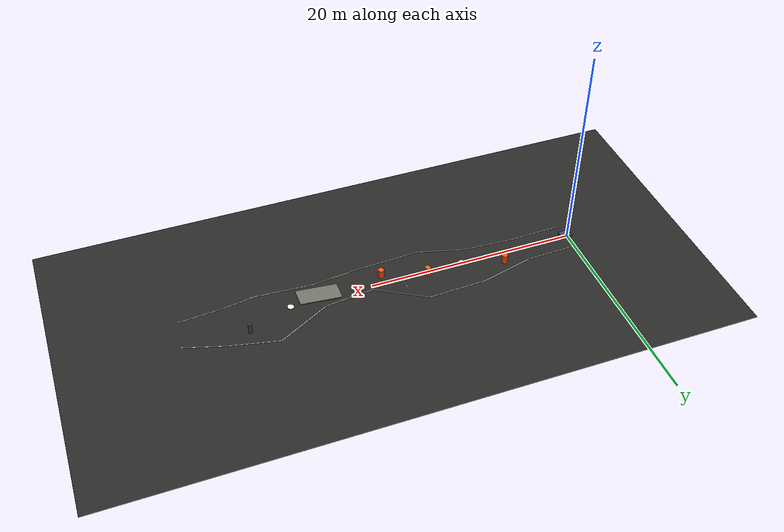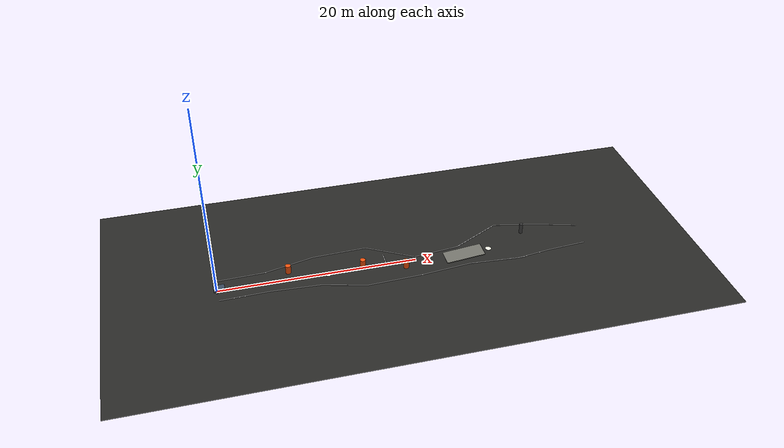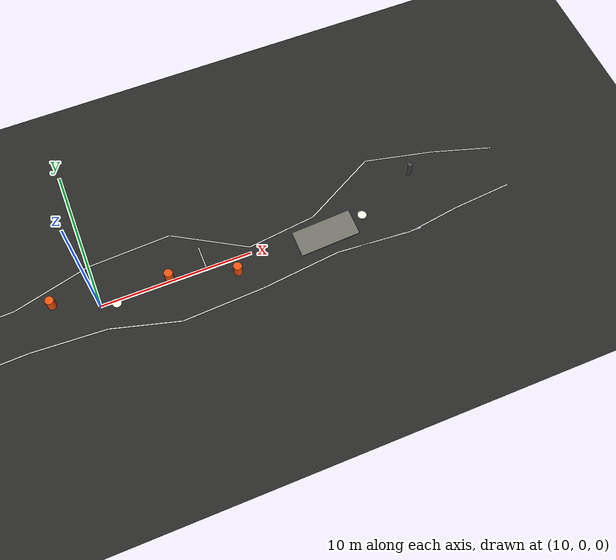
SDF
<?xml version='1.0'?>
<sdf version='1.9'>
  <world name='igvc_competition'>
    <plugin filename='ignition-gazebo-physics-system' name='ignition::gazebo::systems::Physics'/>
    <plugin filename='ignition-gazebo-user-commands-system' name='ignition::gazebo::systems::UserCommands'/>
    <plugin filename='ignition-gazebo-scene-broadcaster-system' name='ignition::gazebo::systems::SceneBroadcaster'/>
    <plugin filename='ignition-gazebo-sensors-system' name='ignition::gazebo::systems::Sensors'>
      <render_engine>ogre2</render_engine>
    </plugin>
    <light name='sun' type='directional'>
      <pose>0 0 20 0 0 0</pose>
      <diffuse>0.8 0.8 0.75 1</diffuse>
      <specular>0.2 0.2 0.2 1</specular>
      <direction>-0.35 0.15 -0.92</direction>
    </light>
    <gravity>0 0 -9.80665</gravity>
    <magnetic_field>6e-06 2.3e-05 -4.2e-05</magnetic_field>
    <atmosphere type='adiabatic'/>
    <physics name='default_physics' type='ode'>
      <max_step_size>0.001</max_step_size>
      <real_time_factor>1.0</real_time_factor>
      <real_time_update_rate>1000</real_time_update_rate>
    </physics>
    <scene>
      <ambient>0.45 0.45 0.45 1</ambient>
      <background>0.70 0.72 0.75 1</background>
      <shadows>true</shadows>
    </scene>
    <spherical_coordinates>
      <surface_model>EARTH_WGS84</surface_model>
      <latitude_deg>37.23027000</latitude_deg>
      <longitude_deg>-80.42504000</longitude_deg>
      <elevation>650.000</elevation>
      <heading_deg>0</heading_deg>
    </spherical_coordinates>

    <model name='asphalt_ground'>
      <static>1</static>
      <pose>19.0000 0.5000 -0.0250 0.000000 0.000000 0.000000</pose>
      <link name='link'>
        <collision name='collision'><geometry><box><size>60.0000 30.0000 0.0500</size></box></geometry></collision>
        <visual name='visual'>
          <geometry><box><size>60.0000 30.0000 0.0500</size></box></geometry>
          <material><ambient>0.16 0.16 0.15 1.0</ambient><diffuse>0.16 0.16 0.15 1.0</diffuse><specular>0.05 0.05 0.05 1</specular></material>
        </visual>
      </link>
    </model>
    <model name='left_boundary_0'>
      <static>1</static>
      <pose>2.4277 1.5971 0.011 0 0 0.029803</pose>
      <link name='link'>
        <visual name='visual'>
          <geometry><box><size>4.9490 0.0762 0.012</size></box></geometry>
          <material><ambient>0.98 0.98 0.98 1</ambient><diffuse>0.98 0.98 0.98 1</diffuse><specular>0.05 0.05 0.05 1</specular><emissive>0.9 0.9 0.9 1</emissive></material>
        </visual>
      </link>
    </model>
    <model name='right_boundary_0'>
      <static>1</static>
      <pose>2.5723 -1.4471 0.011 0 0 0.030175</pose>
      <link name='link'>
        <visual name='visual'>
          <geometry><box><size>5.0555 0.0762 0.012</size></box></geometry>
          <material><ambient>0.98 0.98 0.98 1</ambient><diffuse>0.98 0.98 0.98 1</diffuse><specular>0.05 0.05 0.05 1</specular><emissive>0.9 0.9 0.9 1</emissive></material>
        </visual>
      </link>
    </model>
    <model name='left_boundary_1'>
      <static>1</static>
      <pose>7.4506 2.3034 0.011 0 0 0.243224</pose>
      <link name='link'>
        <visual name='visual'>
          <geometry><box><size>5.2535 0.0762 0.012</size></box></geometry>
          <material><ambient>0.98 0.98 0.98 1</ambient><diffuse>0.98 0.98 0.98 1</diffuse><specular>0.05 0.05 0.05 1</specular><emissive>0.9 0.9 0.9 1</emissive></material>
        </visual>
      </link>
    </model>
    <model name='right_boundary_1'>
      <static>1</static>
      <pose>7.5494 -1.5034 0.011 0 0 -0.054059</pose>
      <link name='link'>
        <visual name='visual'>
          <geometry><box><size>4.9083 0.0762 0.012</size></box></geometry>
          <material><ambient>0.98 0.98 0.98 1</ambient><diffuse>0.98 0.98 0.98 1</diffuse><specular>0.05 0.05 0.05 1</specular><emissive>0.9 0.9 0.9 1</emissive></material>
        </visual>
      </link>
    </model>
    <model name='left_boundary_2'>
      <static>1</static>
      <pose>12.7627 3.0442 0.011 0 0 0.039140</pose>
      <link name='link'>
        <visual name='visual'>
          <geometry><box><size>5.5297 0.0762 0.012</size></box></geometry>
          <material><ambient>0.98 0.98 0.98 1</ambient><diffuse>0.98 0.98 0.98 1</diffuse><specular>0.05 0.05 0.05 1</specular><emissive>0.9 0.9 0.9 1</emissive></material>
        </visual>
      </link>
    </model>
    <model name='right_boundary_2'>
      <static>1</static>
      <pose>12.2373 -2.2442 0.011 0 0 -0.265426</pose>
      <link name='link'>
        <visual name='visual'>
          <geometry><box><size>4.6370 0.0762 0.012</size></box></geometry>
          <material><ambient>0.98 0.98 0.98 1</ambient><diffuse>0.98 0.98 0.98 1</diffuse><specular>0.05 0.05 0.05 1</specular><emissive>0.9 0.9 0.9 1</emissive></material>
        </visual>
      </link>
    </model>
    <model name='left_boundary_3'>
      <static>1</static>
      <pose>17.8159 1.7863 0.011 0 0 -0.537765</pose>
      <link name='link'>
        <visual name='visual'>
          <geometry><box><size>5.3338 0.0762 0.012</size></box></geometry>
          <material><ambient>0.98 0.98 0.98 1</ambient><diffuse>0.98 0.98 0.98 1</diffuse><specular>0.05 0.05 0.05 1</specular><emissive>0.9 0.9 0.9 1</emissive></material>
        </visual>
      </link>
    </model>
    <model name='right_boundary_3'>
      <static>1</static>
      <pose>17.1841 -2.7363 0.011 0 0 0.042803</pose>
      <link name='link'>
        <visual name='visual'>
          <geometry><box><size>5.4240 0.0762 0.012</size></box></geometry>
          <material><ambient>0.98 0.98 0.98 1</ambient><diffuse>0.98 0.98 0.98 1</diffuse><specular>0.05 0.05 0.05 1</specular><emissive>0.9 0.9 0.9 1</emissive></material>
        </visual>
      </link>
    </model>
    <model name='left_boundary_4'>
      <static>1</static>
      <pose>22.4255 0.6864 0.011 0 0 0.114236</pose>
      <link name='link'>
        <visual name='visual'>
          <geometry><box><size>4.6686 0.0762 0.012</size></box></geometry>
          <material><ambient>0.98 0.98 0.98 1</ambient><diffuse>0.98 0.98 0.98 1</diffuse><specular>0.05 0.05 0.05 1</specular><emissive>0.9 0.9 0.9 1</emissive></material>
        </visual>
      </link>
    </model>
    <model name='right_boundary_4'>
      <static>1</static>
      <pose>22.5745 -2.3364 0.011 0 0 0.105510</pose>
      <link name='link'>
        <visual name='visual'>
          <geometry><box><size>5.3918 0.0762 0.012</size></box></geometry>
          <material><ambient>0.98 0.98 0.98 1</ambient><diffuse>0.98 0.98 0.98 1</diffuse><specular>0.05 0.05 0.05 1</specular><emissive>0.9 0.9 0.9 1</emissive></material>
        </visual>
      </link>
    </model>
    <model name='left_boundary_5'>
      <static>1</static>
      <pose>27.2206 2.2927 0.011 0 0 0.496115</pose>
      <link name='link'>
        <visual name='visual'>
          <geometry><box><size>5.6310 0.0762 0.012</size></box></geometry>
          <material><ambient>0.98 0.98 0.98 1</ambient><diffuse>0.98 0.98 0.98 1</diffuse><specular>0.05 0.05 0.05 1</specular><emissive>0.9 0.9 0.9 1</emissive></material>
        </visual>
      </link>
    </model>
    <model name='right_boundary_5'>
      <static>1</static>
      <pose>27.7794 -2.2427 0.011 0 0 -0.075222</pose>
      <link name='link'>
        <visual name='visual'>
          <geometry><box><size>5.0622 0.0762 0.012</size></box></geometry>
          <material><ambient>0.98 0.98 0.98 1</ambient><diffuse>0.98 0.98 0.98 1</diffuse><specular>0.05 0.05 0.05 1</specular><emissive>0.9 0.9 0.9 1</emissive></material>
        </visual>
      </link>
    </model>
    <model name='left_boundary_6'>
      <static>1</static>
      <pose>31.9480 3.1301 0.011 0 0 -0.219729</pose>
      <link name='link'>
        <visual name='visual'>
          <geometry><box><size>4.6135 0.0762 0.012</size></box></geometry>
          <material><ambient>0.98 0.98 0.98 1</ambient><diffuse>0.98 0.98 0.98 1</diffuse><specular>0.05 0.05 0.05 1</specular><emissive>0.9 0.9 0.9 1</emissive></material>
        </visual>
      </link>
    </model>
    <model name='right_boundary_6'>
      <static>1</static>
      <pose>32.0520 -2.1801 0.011 0 0 0.143561</pose>
      <link name='link'>
        <visual name='visual'>
          <geometry><box><size>3.5338 0.0762 0.012</size></box></geometry>
          <material><ambient>0.98 0.98 0.98 1</ambient><diffuse>0.98 0.98 0.98 1</diffuse><specular>0.05 0.05 0.05 1</specular><emissive>0.9 0.9 0.9 1</emissive></material>
        </visual>
      </link>
    </model>
    <model name='left_boundary_7'>
      <static>1</static>
      <pose>36.1848 2.0209 0.011 0 0 -0.296421</pose>
      <link name='link'>
        <visual name='visual'>
          <geometry><box><size>4.1522 0.0762 0.012</size></box></geometry>
          <material><ambient>0.98 0.98 0.98 1</ambient><diffuse>0.98 0.98 0.98 1</diffuse><specular>0.05 0.05 0.05 1</specular><emissive>0.9 0.9 0.9 1</emissive></material>
        </visual>
      </link>
    </model>
    <model name='right_boundary_7'>
      <static>1</static>
      <pose>35.8152 -1.7709 0.011 0 0 0.077497</pose>
      <link name='link'>
        <visual name='visual'>
          <geometry><box><size>4.0410 0.0762 0.012</size></box></geometry>
          <material><ambient>0.98 0.98 0.98 1</ambient><diffuse>0.98 0.98 0.98 1</diffuse><specular>0.05 0.05 0.05 1</specular><emissive>0.9 0.9 0.9 1</emissive></material>
        </visual>
      </link>
    </model>
    <model name='internal_no_cross'>
      <static>1</static>
      <pose>17.0000 0.7000 0.011 0 0 -1.570796</pose>
      <link name='link'>
        <visual name='visual'>
          <geometry><box><size>1.8000 0.0762 0.012</size></box></geometry>
          <material><ambient>0.98 0.98 0.98 1</ambient><diffuse>0.98 0.98 0.98 1</diffuse><specular>0.05 0.05 0.05 1</specular><emissive>0.9 0.9 0.9 1</emissive></material>
        </visual>
      </link>
    </model>
    <model name='dashed_right_boundary_stress_0'>
      <static>1</static>
      <pose>25.8743 -2.1225 0.011 0 0 -0.059928</pose>
      <link name='link'>
        <visual name='visual'>
          <geometry><box><size>0.7500 0.0762 0.012</size></box></geometry>
          <material><ambient>0.98 0.98 0.98 1</ambient><diffuse>0.98 0.98 0.98 1</diffuse><specular>0.05 0.05 0.05 1</specular><emissive>0.9 0.9 0.9 1</emissive></material>
        </visual>
      </link>
    </model>
    <model name='dashed_right_boundary_stress_1'>
      <static>1</static>
      <pose>27.0722 -2.1943 0.011 0 0 -0.059928</pose>
      <link name='link'>
        <visual name='visual'>
          <geometry><box><size>0.7500 0.0762 0.012</size></box></geometry>
          <material><ambient>0.98 0.98 0.98 1</ambient><diffuse>0.98 0.98 0.98 1</diffuse><specular>0.05 0.05 0.05 1</specular><emissive>0.9 0.9 0.9 1</emissive></material>
        </visual>
      </link>
    </model>
    <model name='dashed_right_boundary_stress_2'>
      <static>1</static>
      <pose>28.2700 -2.2662 0.011 0 0 -0.059928</pose>
      <link name='link'>
        <visual name='visual'>
          <geometry><box><size>0.7500 0.0762 0.012</size></box></geometry>
          <material><ambient>0.98 0.98 0.98 1</ambient><diffuse>0.98 0.98 0.98 1</diffuse><specular>0.05 0.05 0.05 1</specular><emissive>0.9 0.9 0.9 1</emissive></material>
        </visual>
      </link>
    </model>
    <model name='dashed_right_boundary_stress_3'>
      <static>1</static>
      <pose>29.4679 -2.3381 0.011 0 0 -0.059928</pose>
      <link name='link'>
        <visual name='visual'>
          <geometry><box><size>0.7500 0.0762 0.012</size></box></geometry>
          <material><ambient>0.98 0.98 0.98 1</ambient><diffuse>0.98 0.98 0.98 1</diffuse><specular>0.05 0.05 0.05 1</specular><emissive>0.9 0.9 0.9 1</emissive></material>
        </visual>
      </link>
    </model>
    <model name='dashed_right_boundary_stress_4'>
      <static>1</static>
      <pose>30.6457 -2.4087 0.011 0 0 -0.059928</pose>
      <link name='link'>
        <visual name='visual'>
          <geometry><box><size>0.7099 0.0762 0.012</size></box></geometry>
          <material><ambient>0.98 0.98 0.98 1</ambient><diffuse>0.98 0.98 0.98 1</diffuse><specular>0.05 0.05 0.05 1</specular><emissive>0.9 0.9 0.9 1</emissive></material>
        </visual>
      </link>
    </model>
    <model name='left_edge_barrel'>
      <static>1</static>
      <pose>7.2000 1.1800 0 0 0 0</pose>
      <link name='link'>
        <collision name='collision'><pose>0 0 0.4250 0 0 0</pose><geometry><cylinder><radius>0.2800</radius><length>0.8500</length></cylinder></geometry></collision>
        <visual name='visual'>
          <pose>0 0 0.4250 0 0 0</pose>
          <geometry><cylinder><radius>0.2800</radius><length>0.8500</length></cylinder></geometry>
          <material><ambient>0.95 0.32 0.05 1.0</ambient><diffuse>0.95 0.32 0.05 1.0</diffuse><specular>0.05 0.05 0.05 1</specular></material>
        </visual>
      </link>
    </model>
    <model name='center_barrel_20ft'>
      <static>1</static>
      <pose>14.6000 0.2200 0 0 0 0</pose>
      <link name='link'>
        <collision name='collision'><pose>0 0 0.4250 0 0 0</pose><geometry><cylinder><radius>0.2800</radius><length>0.8500</length></cylinder></geometry></collision>
        <visual name='visual'>
          <pose>0 0 0.4250 0 0 0</pose>
          <geometry><cylinder><radius>0.2800</radius><length>0.8500</length></cylinder></geometry>
          <material><ambient>0.95 0.32 0.05 1.0</ambient><diffuse>0.95 0.32 0.05 1.0</diffuse><specular>0.05 0.05 0.05 1</specular></material>
        </visual>
      </link>
    </model>
    <model name='decoy_gap_barrel'>
      <static>1</static>
      <pose>18.8000 -0.9500 0 0 0 0</pose>
      <link name='link'>
        <collision name='collision'><pose>0 0 0.4250 0 0 0</pose><geometry><cylinder><radius>0.2800</radius><length>0.8500</length></cylinder></geometry></collision>
        <visual name='visual'>
          <pose>0 0 0.4250 0 0 0</pose>
          <geometry><cylinder><radius>0.2800</radius><length>0.8500</length></cylinder></geometry>
          <material><ambient>0.95 0.32 0.05 1.0</ambient><diffuse>0.95 0.32 0.05 1.0</diffuse><specular>0.05 0.05 0.05 1</specular></material>
        </visual>
      </link>
    </model>
    <model name='post_obstacle'>
      <static>1</static>
      <pose>32.0000 1.7000 0 0 0 0</pose>
      <link name='link'>
        <collision name='collision'><pose>0 0 0.5500 0 0 0</pose><geometry><cylinder><radius>0.1800</radius><length>1.1000</length></cylinder></geometry></collision>
        <visual name='visual'>
          <pose>0 0 0.5500 0 0 0</pose>
          <geometry><cylinder><radius>0.1800</radius><length>1.1000</length></cylinder></geometry>
          <material><ambient>0.25 0.25 0.25 1.0</ambient><diffuse>0.25 0.25 0.25 1.0</diffuse><specular>0.05 0.05 0.05 1</specular></material>
        </visual>
      </link>
    </model>
    <model name='white_circle_pothole_0'>
      <static>1</static>
      <pose>11.0000 -0.1500 0 0 0 0</pose>
      <link name='link'>

        <visual name='visual'>
          <pose>0 0 0.0060 0 0 0</pose>
          <geometry><cylinder><radius>0.3048</radius><length>0.0120</length></cylinder></geometry>
          <material><ambient>0.96 0.96 0.9 1.0</ambient><diffuse>0.96 0.96 0.9 1.0</diffuse><specular>0.05 0.05 0.05 1</specular></material>
        </visual>
      </link>
    </model>
    <model name='white_circle_pothole_1'>
      <static>1</static>
      <pose>27.8000 -0.1000 0 0 0 0</pose>
      <link name='link'>

        <visual name='visual'>
          <pose>0 0 0.0060 0 0 0</pose>
          <geometry><cylinder><radius>0.3048</radius><length>0.0120</length></cylinder></geometry>
          <material><ambient>0.96 0.96 0.9 1.0</ambient><diffuse>0.96 0.96 0.9 1.0</diffuse><specular>0.05 0.05 0.05 1</specular></material>
        </visual>
      </link>
    </model>
    <model name='legal_approach_ramp'>
      <static>1</static>
      <pose>25.0000 -0.5500 0.2000 0.000000 -0.099669 0.000000</pose>
      <link name='link'>
        <collision name='collision'><geometry><box><size>4.0200 1.8000 0.0800</size></box></geometry></collision>
        <visual name='visual'>
          <geometry><box><size>4.0200 1.8000 0.0800</size></box></geometry>
          <material><ambient>0.45 0.45 0.42 1.0</ambient><diffuse>0.45 0.45 0.42 1.0</diffuse><specular>0.05 0.05 0.05 1</specular></material>
        </visual>
      </link>
    </model>
    <model name='shogi'>
      <pose>0.0000 0.0000 0.1295 0 0 0.000000</pose>
      <link name='base_link'>
        <inertial>
          <mass>90.0</mass>
          <inertia>
            <ixx>4.0</ixx><iyy>8.0</iyy><izz>9.0</izz>
            <ixy>0</ixy><ixz>0</ixz><iyz>0</iyz>
          </inertia>
        </inertial>
        <collision name='body_collision'>
          <pose>0.2250 0 0.1800 0 0 0</pose>
          <geometry><box><size>1.0900 0.8200 0.2600</size></box></geometry>
        </collision>
        <visual name='body_visual'>
          <pose>0.2250 0 0.1800 0 0 0</pose>
          <geometry><box><size>1.0900 0.8200 0.2600</size></box></geometry>
          <material><ambient>0.22 0.28 0.36 1.0</ambient><diffuse>0.22 0.28 0.36 1.0</diffuse><specular>0.05 0.05 0.05 1</specular></material>
        </visual>
        <sensor name='zed2i_rgbd' type='rgbd_camera'>
          <pose>0.657600 0.009075 0.307230 0 0.349070 0</pose>
          <always_on>1</always_on>
          <update_rate>15</update_rate>
          <visualize>false</visualize>
          <topic>/igvc_sim/zed</topic>
          <camera>
            <horizontal_fov>1.918862</horizontal_fov>
            <image>
              <width>960</width>
              <height>540</height>
              <format>R8G8B8</format>
            </image>
            <clip>
              <near>0.10</near>
              <far>15.0</far>
            </clip>
          </camera>
        </sensor>
      </link>
      <link name='left_wheel_link'>
        <pose>0 0.36163 0 1.570796 0 0</pose>
        <inertial><mass>3.0</mass><inertia><ixx>0.05</ixx><iyy>0.05</iyy><izz>0.05</izz><ixy>0</ixy><ixz>0</ixz><iyz>0</iyz></inertia></inertial>
        <collision name='collision'><geometry><cylinder><radius>0.12946</radius><length>0.1000</length></cylinder></geometry></collision>
        <visual name='visual'><geometry><cylinder><radius>0.12946</radius><length>0.1000</length></cylinder></geometry><material><ambient>0.03 0.03 0.03 1.0</ambient><diffuse>0.03 0.03 0.03 1.0</diffuse><specular>0.05 0.05 0.05 1</specular></material></visual>
      </link>
      <link name='right_wheel_link'>
        <pose>0 -0.36163 0 1.570796 0 0</pose>
        <inertial><mass>3.0</mass><inertia><ixx>0.05</ixx><iyy>0.05</iyy><izz>0.05</izz><ixy>0</ixy><ixz>0</ixz><iyz>0</iyz></inertia></inertial>
        <collision name='collision'><geometry><cylinder><radius>0.12946</radius><length>0.1000</length></cylinder></geometry></collision>
        <visual name='visual'><geometry><cylinder><radius>0.12946</radius><length>0.1000</length></cylinder></geometry><material><ambient>0.03 0.03 0.03 1.0</ambient><diffuse>0.03 0.03 0.03 1.0</diffuse><specular>0.05 0.05 0.05 1</specular></material></visual>
      </link>
      <joint name='Left_Wheel' type='revolute'>
        <parent>base_link</parent>
        <child>left_wheel_link</child>
        <axis><xyz>0 1 0</xyz><limit><lower>-1e16</lower><upper>1e16</upper></limit></axis>
      </joint>
      <joint name='Right_Wheel' type='revolute'>
        <parent>base_link</parent>
        <child>right_wheel_link</child>
        <axis><xyz>0 1 0</xyz><limit><lower>-1e16</lower><upper>1e16</upper></limit></axis>
      </joint>
      <plugin filename='ignition-gazebo-diff-drive-system' name='ignition::gazebo::systems::DiffDrive'>
        <left_joint>Left_Wheel</left_joint>
        <right_joint>Right_Wheel</right_joint>
        <wheel_separation>0.72326</wheel_separation>
        <wheel_radius>0.12946</wheel_radius>
        <topic>/cmd_vel_gazebo</topic>
        <odom_topic>/model/shogi/odometry</odom_topic>
        <tf_topic>/model/shogi/tf</tf_topic>
        <frame_id>odom</frame_id>
        <child_frame_id>base_link</child_frame_id>
        <odom_publish_frequency>50</odom_publish_frequency>
        <max_linear_acceleration>1.0</max_linear_acceleration>
        <max_angular_acceleration>2.0</max_angular_acceleration>
      </plugin>
    </model>
  </world>
</sdf>
